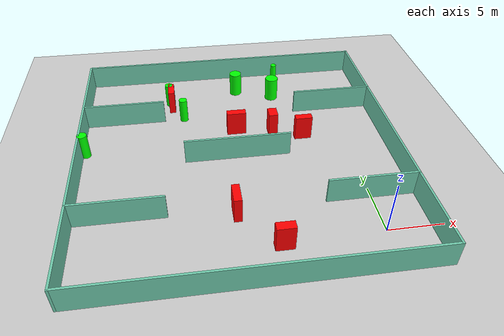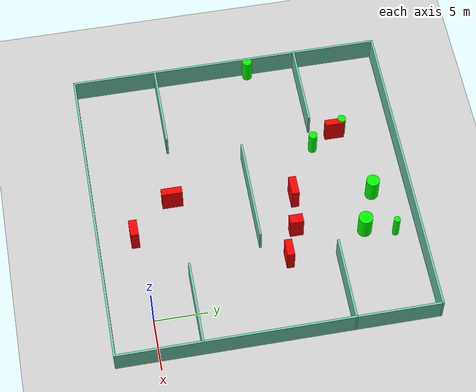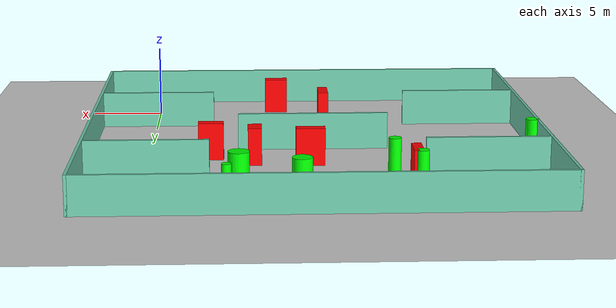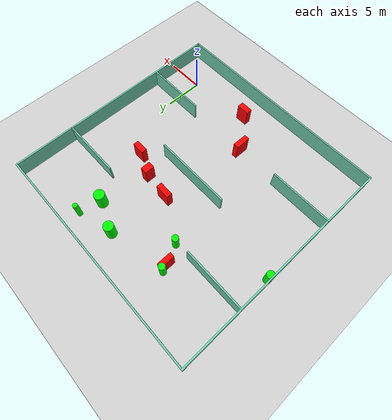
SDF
<sdf version="1.7">
 <world name="default">
  <light name="sun" type="directional">
   <pose>0 0 10 0 -0 0</pose>
   <diffuse>0.8 0.8 0.8 1</diffuse>
   <specular>0.2 0.2 0.2 1</specular>
   <attenuation>
    <range>1000</range>
    <constant>0.9</constant>
    <linear>0.01</linear>
    <quadratic>0.001</quadratic>
   </attenuation>
   <direction>-0.5 0.1 -0.9</direction>
   <spot><inner_angle>0</inner_angle><outer_angle>0</outer_angle><falloff>0</falloff></spot>
  </light>
  <model name="ground_plane">
   <static>1</static>
   <link name="link">
    <collision name="collision">
     <geometry><plane><normal>0 0 1</normal><size>100 100</size></plane></geometry>
     <surface>
      <contact><collide_bitmask>65535</collide_bitmask></contact>
      <friction><ode><mu>100</mu><mu2>50</mu2></ode></friction>
     </surface>
    </collision>
    <visual name="visual">
     <cast_shadows>0</cast_shadows>
     <geometry><plane><normal>0 0 1</normal><size>100 100</size></plane></geometry>
     <material>
      <script><uri>file://media/materials/scripts/gazebo.material</uri><name>Gazebo/Grey</name></script>
     </material>
    </visual>
   </link>
  </model>
  <gravity>0 0 -9.8</gravity>
  <magnetic_field>6e-06 2.3e-05 -4.2e-05</magnetic_field>
  <atmosphere type="adiabatic"/>
  <physics type="ode">
   <max_step_size>0.001</max_step_size>
   <real_time_factor>1</real_time_factor>
   <real_time_update_rate>1000</real_time_update_rate>
  </physics>
  <scene><ambient>0.4 0.4 0.4 1</ambient><background>0.7 0.7 0.7 1</background><shadows>1</shadows></scene>
  <spherical_coordinates>
   <surface_model>EARTH_WGS84</surface_model>
   <latitude_deg>0</latitude_deg>
   <longitude_deg>0</longitude_deg>
   <elevation>0</elevation>
   <heading_deg>0</heading_deg>
  </spherical_coordinates>
  <model name="my_base_walls">
   <link name="Wall_10">
    <collision name="Wall_10_Collision">
     <geometry><box><size>8.2 0.2 2.5</size></box></geometry>
     <pose>0 0 1.25 0 -0 0</pose>
    </collision>
    <visual name="Wall_10_Visual">
     <pose>0 0 1.25 0 -0 0</pose>
     <geometry><box><size>8.2 0.2 2.5</size></box></geometry>
     <material>
      <script><uri>file://media/materials/scripts/gazebo.material</uri><name>Gazebo/Grey</name></script>
      <ambient>0.435294 0.796078 0.67451 1</ambient>
     </material>
     <meta><layer>0</layer></meta>
    </visual>
    <pose>-11 -7 0 0 -0 0</pose>
   </link>
   <link name="Wall_12">
    <collision name="Wall_12_Collision">
     <geometry><box><size>8.2 0.2 2.5</size></box></geometry>
     <pose>0 0 1.25 0 -0 0</pose>
    </collision>
    <visual name="Wall_12_Visual">
     <pose>0 0 1.25 0 -0 0</pose>
     <geometry><box><size>8.2 0.2 2.5</size></box></geometry>
     <material>
      <script><uri>file://media/materials/scripts/gazebo.material</uri><name>Gazebo/Grey</name></script>
      <ambient>0.435294 0.796078 0.67451 1</ambient>
     </material>
     <meta><layer>0</layer></meta>
    </visual>
    <pose>-11 7 0 0 -0 0</pose>
   </link>
   <link name="Wall_14">
    <collision name="Wall_14_Collision">
     <geometry><box><size>8.2 0.2 2.5</size></box></geometry>
     <pose>0 0 1.25 0 -0 0</pose>
    </collision>
    <visual name="Wall_14_Visual">
     <pose>0 0 1.25 0 -0 0</pose>
     <geometry><box><size>8.2 0.2 2.5</size></box></geometry>
     <material>
      <script><uri>file://media/materials/scripts/gazebo.material</uri><name>Gazebo/Grey</name></script>
      <ambient>0.435294 0.796078 0.67451 1</ambient>
     </material>
     <meta><layer>0</layer></meta>
    </visual>
    <pose>11 7 0 0 -0 3.14159</pose>
   </link>
   <link name="Wall_16">
    <collision name="Wall_16_Collision">
     <geometry><box><size>10.2 0.2 2.5</size></box></geometry>
     <pose>0 0 1.25 0 -0 0</pose>
    </collision>
    <visual name="Wall_16_Visual">
     <pose>0 0 1.25 0 -0 0</pose>
     <geometry><box><size>10.2 0.2 2.5</size></box></geometry>
     <material>
      <script><uri>file://media/materials/scripts/gazebo.material</uri><name>Gazebo/Grey</name></script>
      <ambient>0.435294 0.796078 0.67451 1</ambient>
     </material>
     <meta><layer>0</layer></meta>
    </visual>
    <pose>0 0 0 0 -0 3.14159</pose>
   </link>
   <link name="Wall_2">
    <collision name="Wall_2_Collision">
     <geometry><box><size>30.2 0.2 2.5</size></box></geometry>
     <pose>0 0 1.25 0 -0 0</pose>
    </collision>
    <visual name="Wall_2_Visual">
     <pose>0 0 1.25 0 -0 0</pose>
     <geometry><box><size>30.2 0.2 2.5</size></box></geometry>
     <material>
      <script><uri>file://media/materials/scripts/gazebo.material</uri><name>Gazebo/Grey</name></script>
      <ambient>0.435294 0.796078 0.67451 1</ambient>
     </material>
     <meta><layer>0</layer></meta>
    </visual>
    <pose>0 -15 0 0 -0 3.14159</pose>
   </link>
   <link name="Wall_3">
    <collision name="Wall_3_Collision">
     <geometry><box><size>30.2 0.2 2.5</size></box></geometry>
     <pose>0 0 1.25 0 -0 0</pose>
    </collision>
    <visual name="Wall_3_Visual">
     <pose>0 0 1.25 0 -0 0</pose>
     <geometry><box><size>30.2 0.2 2.5</size></box></geometry>
     <material>
      <script><uri>file://media/materials/scripts/gazebo.material</uri><name>Gazebo/Grey</name></script>
      <ambient>0.435294 0.796078 0.67451 1</ambient>
     </material>
     <meta><layer>0</layer></meta>
    </visual>
    <pose>-15 0 0 0 -0 1.5708</pose>
   </link>
   <link name="Wall_4">
    <collision name="Wall_4_Collision">
     <geometry><box><size>30.2 0.2 2.5</size></box></geometry>
     <pose>0 0 1.25 0 -0 0</pose>
    </collision>
    <visual name="Wall_4_Visual">
     <pose>0 0 1.25 0 -0 0</pose>
     <geometry><box><size>30.2 0.2 2.5</size></box></geometry>
     <material>
      <script><uri>file://media/materials/scripts/gazebo.material</uri><name>Gazebo/Grey</name></script>
      <ambient>0.435294 0.796078 0.67451 1</ambient>
     </material>
     <meta><layer>0</layer></meta>
    </visual>
    <pose>0 15 0 0 -0 0</pose>
   </link>
   <link name="Wall_6">
    <collision name="Wall_6_Collision">
     <geometry><box><size>30.2 0.2 2.5</size></box></geometry>
     <pose>0 0 1.25 0 -0 0</pose>
    </collision>
    <visual name="Wall_6_Visual">
     <pose>0 0 1.25 0 -0 0</pose>
     <geometry><box><size>30.2 0.2 2.5</size></box></geometry>
     <material>
      <script><uri>file://media/materials/scripts/gazebo.material</uri><name>Gazebo/Grey</name></script>
      <ambient>0.435294 0.796078 0.67451 1</ambient>
     </material>
     <meta><layer>0</layer></meta>
    </visual>
    <pose>15 0 0 0 -0 1.5708</pose>
   </link>
   <link name="Wall_8">
    <collision name="Wall_8_Collision">
     <geometry><box><size>8.2 0.2 2.5</size></box></geometry>
     <pose>0 0 1.25 0 -0 0</pose>
    </collision>
    <visual name="Wall_8_Visual">
     <pose>0 0 1.25 0 -0 0</pose>
     <geometry><box><size>8.2 0.2 2.5</size></box></geometry>
     <material>
      <script><uri>file://media/materials/scripts/gazebo.material</uri><name>Gazebo/Grey</name></script>
      <ambient>0.435294 0.796078 0.67451 1</ambient>
     </material>
     <meta><layer>0</layer></meta>
    </visual>
    <pose>11 -7 0 0 -0 3.14159</pose>
   </link>
   <static>1</static>
   <pose>-11 11 0 0 -0 0</pose>
  </model>
  <model name="cylinder1">
   <static>1</static>
   <link name="link">
    <inertial>
     <mass>1</mass>
     <inertia><ixx>0.5</ixx><ixy>0</ixy><ixz>0</ixz><iyy>0.5</iyy><iyz>0</iyz><izz>1</izz></inertia>
    </inertial>
    <collision name="collision">
     <geometry><cylinder><radius>0.40591294846283243</radius><length>2.5</length></cylinder></geometry>
    </collision>
    <visual name="visual">
     <geometry><cylinder><radius>0.40591294846283243</radius><length>2.5</length></cylinder></geometry>
     <material>
      <ambient>0 1 0 1</ambient>
      <diffuse>0 1 0 1</diffuse>
      <specular>0.1 0.1 0.1 1</specular>
      <emissive>0 0 0 0</emissive>
     </material>
    </visual>
   </link>
   <pose>-17.309952944441704 21.104603104465404 1.25 0 0 0</pose>
  </model>
  <model name="cylinder2">
   <static>1</static>
   <link name="link">
    <inertial>
     <mass>1</mass>
     <inertia><ixx>0.5</ixx><ixy>0</ixy><ixz>0</ixz><iyy>0.5</iyy><iyz>0</iyz><izz>1</izz></inertia>
    </inertial>
    <collision name="collision">
     <geometry><cylinder><radius>0.6723448564985965</radius><length>2.5</length></cylinder></geometry>
    </collision>
    <visual name="visual">
     <geometry><cylinder><radius>0.6723448564985965</radius><length>2.5</length></cylinder></geometry>
     <material>
      <ambient>0 1 0 1</ambient>
      <diffuse>0 1 0 1</diffuse>
      <specular>0.1 0.1 0.1 1</specular>
      <emissive>0 0 0 0</emissive>
     </material>
    </visual>
   </link>
   <pose>-5.9839401652263025 21.03828387666351 1.25 0 0 0</pose>
  </model>
  <model name="cylinder3">
   <static>1</static>
   <link name="link">
    <inertial>
     <mass>1</mass>
     <inertia><ixx>0.5</ixx><ixy>0</ixy><ixz>0</ixz><iyy>0.5</iyy><iyz>0</iyz><izz>1</izz></inertia>
    </inertial>
    <collision name="collision">
     <geometry><cylinder><radius>0.6327385397369809</radius><length>2.5</length></cylinder></geometry>
    </collision>
    <visual name="visual">
     <geometry><cylinder><radius>0.6327385397369809</radius><length>2.5</length></cylinder></geometry>
     <material>
      <ambient>0 1 0 1</ambient>
      <diffuse>0 1 0 1</diffuse>
      <specular>0.1 0.1 0.1 1</specular>
      <emissive>0 0 0 0</emissive>
     </material>
    </visual>
   </link>
   <pose>-9.837041717292216 22.568143255597548 1.25 0 0 0</pose>
  </model>
  <model name="cylinder4">
   <static>1</static>
   <link name="link">
    <inertial>
     <mass>1</mass>
     <inertia><ixx>0.5</ixx><ixy>0</ixy><ixz>0</ixz><iyy>0.5</iyy><iyz>0</iyz><izz>1</izz></inertia>
    </inertial>
    <collision name="collision">
     <geometry><cylinder><radius>0.4661781591208073</radius><length>2.5</length></cylinder></geometry>
    </collision>
    <visual name="visual">
     <geometry><cylinder><radius>0.4661781591208073</radius><length>2.5</length></cylinder></geometry>
     <material>
      <ambient>0 1 0 1</ambient>
      <diffuse>0 1 0 1</diffuse>
      <specular>0.1 0.1 0.1 1</specular>
      <emissive>0 0 0 0</emissive>
     </material>
    </visual>
   </link>
   <pose>-25.668364519591353 13.239798204169702 1.25 0 0 0</pose>
  </model>
  <model name="cylinder5">
   <static>1</static>
   <link name="link">
    <inertial>
     <mass>1</mass>
     <inertia><ixx>0.5</ixx><ixy>0</ixy><ixz>0</ixz><iyy>0.5</iyy><iyz>0</iyz><izz>1</izz></inertia>
    </inertial>
    <collision name="collision">
     <geometry><cylinder><radius>0.41063210168027175</radius><length>2.5</length></cylinder></geometry>
    </collision>
    <visual name="visual">
     <geometry><cylinder><radius>0.41063210168027175</radius><length>2.5</length></cylinder></geometry>
     <material>
      <ambient>0 1 0 1</ambient>
      <diffuse>0 1 0 1</diffuse>
      <specular>0.1 0.1 0.1 1</specular>
      <emissive>0 0 0 0</emissive>
     </material>
    </visual>
   </link>
   <pose>-15.906626073811207 17.98732924134353 1.25 0 0 0</pose>
  </model>
  <model name="cylinder6">
   <static>1</static>
   <link name="link">
    <inertial>
     <mass>1</mass>
     <inertia><ixx>0.5</ixx><ixy>0</ixy><ixz>0</ixz><iyy>0.5</iyy><iyz>0</iyz><izz>1</izz></inertia>
    </inertial>
    <collision name="collision">
     <geometry><cylinder><radius>0.31128955582937806</radius><length>2.5</length></cylinder></geometry>
    </collision>
    <visual name="visual">
     <geometry><cylinder><radius>0.31128955582937806</radius><length>2.5</length></cylinder></geometry>
     <material>
      <ambient>0 1 0 1</ambient>
      <diffuse>0 1 0 1</diffuse>
      <specular>0.1 0.1 0.1 1</specular>
      <emissive>0 0 0 0</emissive>
     </material>
    </visual>
   </link>
   <pose>-5.262292168383949 23.872220300558688 1.25 0 0 0</pose>
  </model>
  <model name="box1">
   <static>1</static>
   <link name="link">
    <inertial>
     <mass>1</mass>
     <inertia><ixx>0.083</ixx><ixy>0</ixy><ixz>0</ixz><iyy>0.083</iyy><iyz>0</iyz><izz>0.083</izz></inertia>
    </inertial>
    <collision name="collision">
     <geometry><box><size>1.669939402675288 0.7119743933992267 2.5</size></box></geometry>
    </collision>
    <visual name="visual">
     <geometry><box><size>1.669939402675288 0.7119743933992267 2.5</size></box></geometry>
     <material>
      <ambient>1 0 0 1</ambient>
      <diffuse>1 0 0 1</diffuse>
      <specular>0.1 0.1 0.1 1</specular>
      <emissive>0 0 0 0</emissive>
     </material>
    </visual>
    <sensor name="my_contact" type="contact">
     <contact><collision>box_collision</collision><topic>__default_topic__</topic></contact>
    </sensor>
   </link>
   <pose>-4.1084975994324715 13.412278813120789 1.25 0 0 0</pose>
  </model>
  <model name="box2">
   <static>1</static>
   <link name="link">
    <inertial>
     <mass>1</mass>
     <inertia><ixx>0.083</ixx><ixy>0</ixy><ixz>0</ixz><iyy>0.083</iyy><iyz>0</iyz><izz>0.083</izz></inertia>
    </inertial>
    <collision name="collision">
     <geometry><box><size>0.7006243915182482 1.9839951741289599 2.5</size></box></geometry>
    </collision>
    <visual name="visual">
     <geometry><box><size>0.7006243915182482 1.9839951741289599 2.5</size></box></geometry>
     <material>
      <ambient>1 0 0 1</ambient>
      <diffuse>1 0 0 1</diffuse>
      <specular>0.1 0.1 0.1 1</specular>
      <emissive>0 0 0 0</emissive>
     </material>
    </visual>
    <sensor name="my_contact" type="contact">
     <contact><collision>box_collision</collision><topic>__default_topic__</topic></contact>
    </sensor>
   </link>
   <pose>-12.06166138518401 3.5815106725488093 1.25 0 0 0</pose>
  </model>
  <model name="box3">
   <static>1</static>
   <link name="link">
    <inertial>
     <mass>1</mass>
     <inertia><ixx>0.083</ixx><ixy>0</ixy><ixz>0</ixz><iyy>0.083</iyy><iyz>0</iyz><izz>0.083</izz></inertia>
    </inertial>
    <collision name="collision">
     <geometry><box><size>0.6268409607173158 1.870664174707592 2.5</size></box></geometry>
    </collision>
    <visual name="visual">
     <geometry><box><size>0.6268409607173158 1.870664174707592 2.5</size></box></geometry>
     <material>
      <ambient>1 0 0 1</ambient>
      <diffuse>1 0 0 1</diffuse>
      <specular>0.1 0.1 0.1 1</specular>
      <emissive>0 0 0 0</emissive>
     </material>
    </visual>
    <sensor name="my_contact" type="contact">
     <contact><collision>box_collision</collision><topic>__default_topic__</topic></contact>
    </sensor>
   </link>
   <pose>-17.072899584928145 20.363912696398415 1.25 0 0 0</pose>
  </model>
  <model name="box4">
   <static>1</static>
   <link name="link">
    <inertial>
     <mass>1</mass>
     <inertia><ixx>0.083</ixx><ixy>0</ixy><ixz>0</ixz><iyy>0.083</iyy><iyz>0</iyz><izz>0.083</izz></inertia>
    </inertial>
    <collision name="collision">
     <geometry><box><size>1.6330689070476416 0.7919263441494413 2.5</size></box></geometry>
    </collision>
    <visual name="visual">
     <geometry><box><size>1.6330689070476416 0.7919263441494413 2.5</size></box></geometry>
     <material>
      <ambient>1 0 0 1</ambient>
      <diffuse>1 0 0 1</diffuse>
      <specular>0.1 0.1 0.1 1</specular>
      <emissive>0 0 0 0</emissive>
     </material>
    </visual>
    <sensor name="my_contact" type="contact">
     <contact><collision>box_collision</collision><topic>__default_topic__</topic></contact>
    </sensor>
   </link>
   <pose>-8.723213055590548 -0.5167723095009906 1.25 0 0 0</pose>
  </model>
  <model name="box5">
   <static>1</static>
   <link name="link">
    <inertial>
     <mass>1</mass>
     <inertia><ixx>0.083</ixx><ixy>0</ixy><ixz>0</ixz><iyy>0.083</iyy><iyz>0</iyz><izz>0.083</izz></inertia>
    </inertial>
    <collision name="collision">
     <geometry><box><size>1.9060826064069138 0.7216952351646188 2.5</size></box></geometry>
    </collision>
    <visual name="visual">
     <geometry><box><size>1.9060826064069138 0.7216952351646188 2.5</size></box></geometry>
     <material>
      <ambient>1 0 0 1</ambient>
      <diffuse>1 0 0 1</diffuse>
      <specular>0.1 0.1 0.1 1</specular>
      <emissive>0 0 0 0</emissive>
     </material>
    </visual>
    <sensor name="my_contact" type="contact">
     <contact><collision>box_collision</collision><topic>__default_topic__</topic></contact>
    </sensor>
   </link>
   <pose>-10.662409140005046 15.0801916887233 1.25 0 0 0</pose>
  </model>
  <model name="box6">
   <static>1</static>
   <link name="link">
    <inertial>
     <mass>1</mass>
     <inertia><ixx>0.083</ixx><ixy>0</ixy><ixz>0</ixz><iyy>0.083</iyy><iyz>0</iyz><izz>0.083</izz></inertia>
    </inertial>
    <collision name="collision">
     <geometry><box><size>0.9024138396107819 1.2766314146986615 2.5</size></box></geometry>
    </collision>
    <visual name="visual">
     <geometry><box><size>0.9024138396107819 1.2766314146986615 2.5</size></box></geometry>
     <material>
      <ambient>1 0 0 1</ambient>
      <diffuse>1 0 0 1</diffuse>
      <specular>0.1 0.1 0.1 1</specular>
      <emissive>0 0 0 0</emissive>
     </material>
    </visual>
    <sensor name="my_contact" type="contact">
     <contact><collision>box_collision</collision><topic>__default_topic__</topic></contact>
    </sensor>
   </link>
   <pose>-7.011636530806577 14.61731860299263 1.25 0 0 0</pose>
  </model>
 </world>
</sdf>
